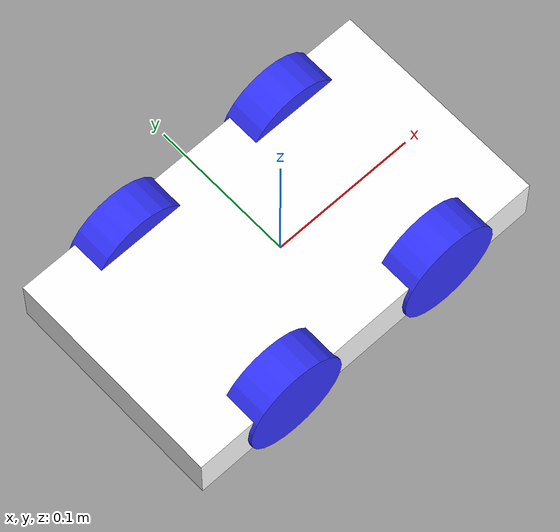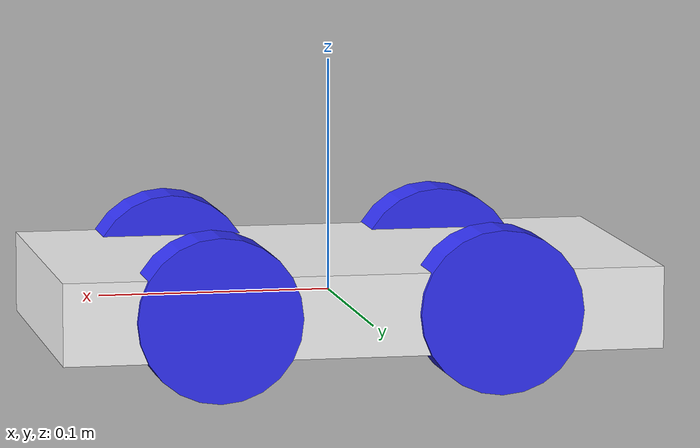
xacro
<?xml version="1.0"?>
<robot xmlns:xacro="http://www.ros.org/wiki/xacro">

    <xacro:include filename="inertial_macros.xacro"/>

    <material name="white">
        <color rgba="1 1 1 1" />
    </material>

    <material name="blue">
        <color rgba="0.2 0.2 1 1"/>
    </material>

    <material name="black">
        <color rgba="0 0 0 1"/>
    </material>

    <!-- BASE LINK -->

    <link name="base_link">

    </link>

    <!-- CHASSIS LINK -->

    <joint name="chassis_joint" type="fixed">
        <parent link="base_link"/>
        <child link="chassis"/>
        <origin xyz="-0.13 0 0"/>
    </joint>

    <link name="chassis">
        <visual>
            <origin xyz="0.128 0 0"/>
            <geometry>
                <box size="0.256 0.15 0.035"/>
            </geometry>
            <material name="white"/>
        </visual>
        <collision>
            <origin xyz="0 0 0"/>
            <geometry>
                <box size="0.256 0.15 0.035"/>
            </geometry>
        </collision>
        <xacro:inertial_box mass="0.5" x="0.254" y="0.1524" z="0.15">
            <origin xyz="0.128 0 0" rpy="0 0 0"/>
        </xacro:inertial_box>
    </link>

    <gazebo reference="chassis">
        <material>Gazebo/White</material>
    </gazebo>

    <!-- LEFT FRONT WHEEL LINK -->

    <joint name="left_front_wheel_joint" type="continuous">
        <parent link="base_link"/>
        <child link="left_front_wheel"/>
        <origin xyz="0.06 0.065 0" rpy="-${pi/2} 0 0" />
        <axis xyz="0 0 1"/>
        <limit lower="-3.1416" upper="3.1416" effort="10" velocity="10"/>
    </joint>

    <link name="left_front_wheel">
        <visual>
            <geometry>
                <cylinder radius="0.035" length="0.025"/>
            </geometry>
            <material name="blue"/>
        </visual>
        <collision>
            <geometry>
                <cylinder radius="0.035" length="0.025"/>
            </geometry>
        </collision>
        <xacro:inertial_cylinder mass="0.1" length="0.025" radius="0.035">
            <origin xyz="0 0 0" rpy="1.5708 0 0"/>
        </xacro:inertial_cylinder>
    </link>

    <gazebo reference="left_front_wheel">
        <material>Gazebo/Blue</material>
    </gazebo>

    <!-- RIGHT FRONT WHEEL LINK -->

    <joint name="right_front_wheel_joint" type="continuous">
        <parent link="base_link"/>
        <child link="right_front_wheel"/>
        <origin xyz="0.06 -0.065 0" rpy="${pi/2} 0 0" />
        <axis xyz="0 0 -1"/>
        <limit lower="-3.1416" upper="3.1416" effort="10" velocity="10"/>
    </joint>

    <link name="right_front_wheel">
        <visual>
            <geometry>
                <cylinder radius="0.035" length="0.025"/>
            </geometry>
            <material name="blue"/>
        </visual>
        <collision>
            <geometry>
                <cylinder radius="0.035" length="0.025"/>
            </geometry>
        </collision>
        <xacro:inertial_cylinder mass="0.1" length="0.025" radius="0.035">
            <origin xyz="0 0 0" rpy="1.5708 0 0"/>
        </xacro:inertial_cylinder>
    </link>

    <gazebo reference="right_front_wheel">
        <material>Gazebo/Blue</material>
    </gazebo>

    <!-- LEFT REAR WHEEL LINK -->

    <joint name="left_rear_wheel_joint" type="continuous">
        <parent link="base_link"/>
        <child link="left_rear_wheel"/>
        <origin xyz="-0.06 0.065 0" rpy="-${pi/2} 0 0" />
        <axis xyz="0 0 1"/>
        <limit lower="-3.1416" upper="3.1416" effort="10" velocity="10"/>
    </joint>

    <link name="left_rear_wheel">
        <visual>
            <geometry>
                <cylinder radius="0.035" length="0.025"/>
            </geometry>
            <material name="blue"/>
        </visual>
        <collision>
            <geometry>
                <cylinder radius="0.035" length="0.025"/>
            </geometry>
        </collision>
        <xacro:inertial_cylinder mass="0.1" length="0.025" radius="0.035">
            <origin xyz="0 0 0" rpy="1.5708 0 0"/>
        </xacro:inertial_cylinder>
    </link>

    <gazebo reference="left_rear_wheel">
        <material>Gazebo/Blue</material>
    </gazebo>

    <!-- RIGHT REAR WHEEL LINK -->

    <joint name="right_rear_wheel_joint" type="continuous">
        <parent link="base_link"/>
        <child link="right_rear_wheel"/>
        <origin xyz="-0.06 -0.065 0" rpy="${pi/2} 0 0" />
        <axis xyz="0 0 -1"/>
        <limit lower="-3.1416" upper="3.1416" effort="10" velocity="10"/>
    </joint>

    <link name="right_rear_wheel">
        <visual>
            <geometry>
                <cylinder radius="0.035" length="0.025"/>
            </geometry>
            <material name="blue"/>
        </visual>
        <collision>
            <geometry>
                <cylinder radius="0.035" length="0.025"/>
            </geometry>
        </collision>
        <xacro:inertial_cylinder mass="0.1" length="0.025" radius="0.035">
            <origin xyz="0 0 0" rpy="1.5708 0 0"/>
        </xacro:inertial_cylinder>
    </link>

    <gazebo reference="right_rear_wheel">
        <material>Gazebo/Blue</material>
    </gazebo>

</robot>
